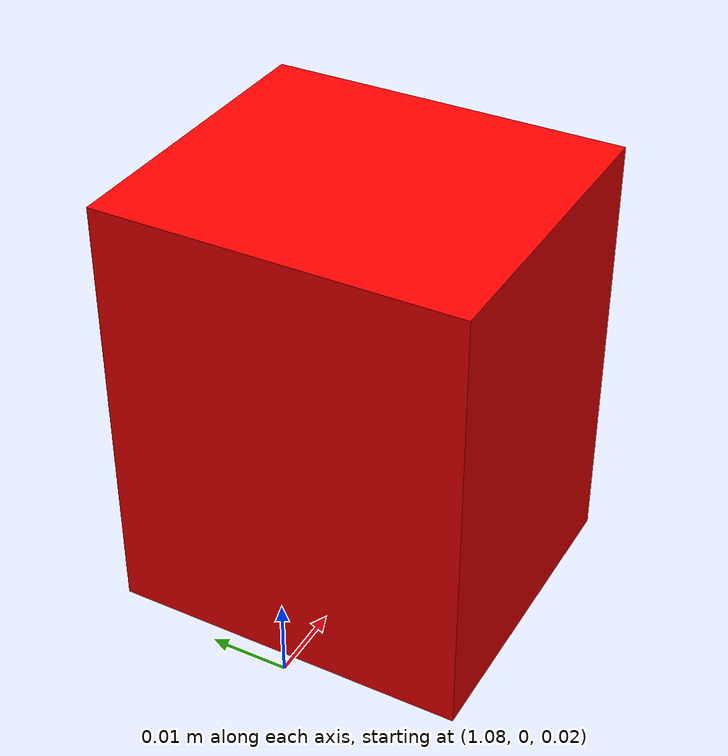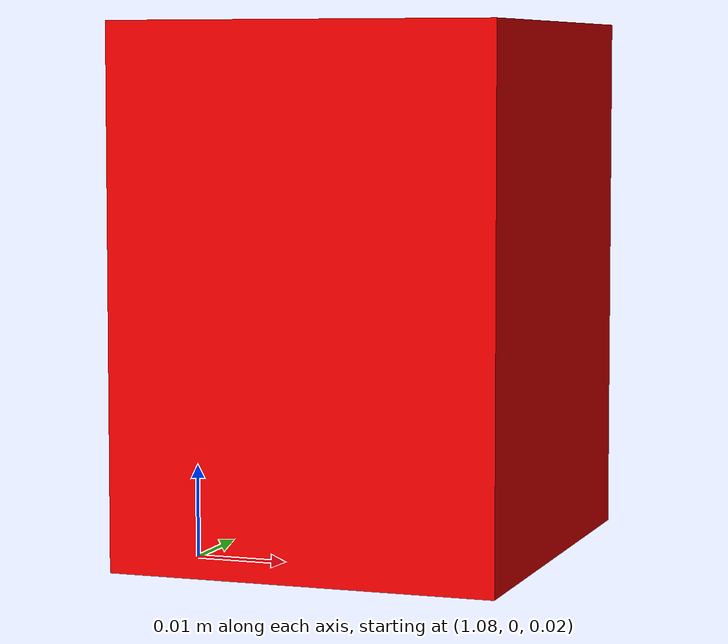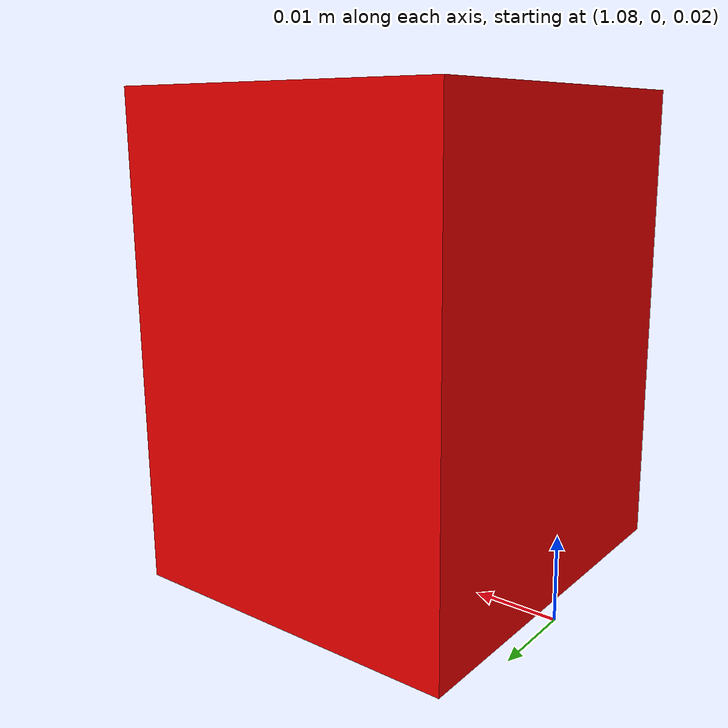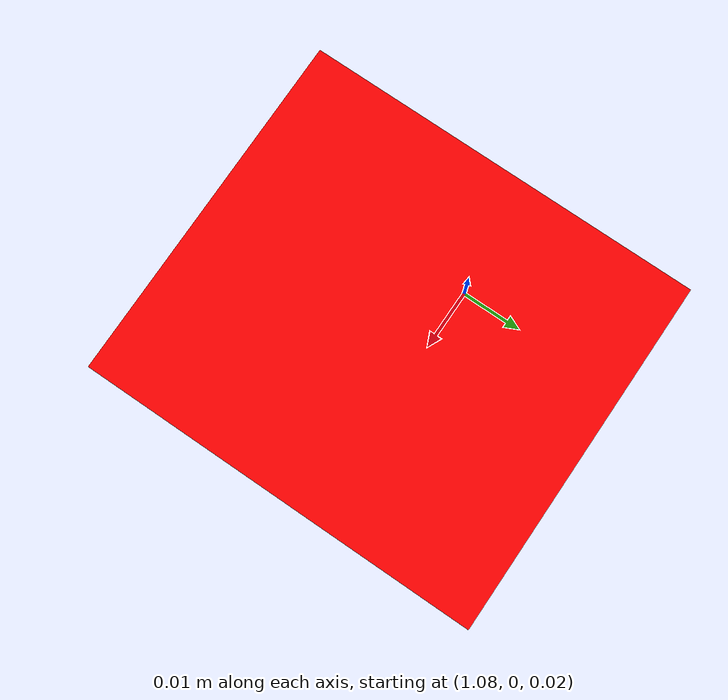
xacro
<?xml version="1.0"?>
<robot name="unit_box" xmlns:xacro="http://ros.org/wiki/xacro">

  <!-- Args -->
  <xacro:arg name="x" default="1.1"/>    <!-- 60 cm in front -->
  <xacro:arg name="y" default="0.0"/>
  <xacro:arg name="z" default="0.05"/>   <!-- 5 cm above ground -->
  <xacro:arg name="box_x" default="0.04"/>
  <xacro:arg name="box_y" default="0.045"/>
  <xacro:arg name="box_z" default="0.055"/>
  <xacro:arg name="mass"  default="0.2"/>
  <xacro:arg name="color" default="red"/> <!-- red | yellow | brown | grey -->

  <!-- Arg -> properties -->
  <xacro:property name="px" value="$(arg x)"/>
  <xacro:property name="py" value="$(arg y)"/>
  <xacro:property name="pz" value="$(arg z)"/>
  <xacro:property name="sx" value="$(arg box_x)"/>
  <xacro:property name="sy" value="$(arg box_y)"/>
  <xacro:property name="sz" value="$(arg box_z)"/>
  <xacro:property name="m"  value="$(arg mass)"/>
  <xacro:property name="cname" value="$(arg color)"/>

  <xacro:property name="origin_xyz" value="${px} ${py} ${pz}"/>
  <!-- inertia for a solid box -->
  <xacro:property name="ixx" value="${(m*((sy**2)+(sz**2)))/12.0}"/>
  <xacro:property name="iyy" value="${(m*((sx**2)+(sz**2)))/12.0}"/>
  <xacro:property name="izz" value="${(m*((sx**2)+(sy**2)))/12.0}"/>

  <!-- Default RGBA; macro overrides into parent scope -->
  <xacro:property name="rgba" value="1 0 0 1"/> <!-- default red -->
  <xacro:macro name="set_rgba_from_color" params="name">
    <!-- fall back stays as-is if none match -->
    <xacro:if value="${name == 'red'}">
      <xacro:property name="rgba" value="1 0 0 1" scope="parent"/>
    </xacro:if>
    <xacro:if value="${name == 'yellow'}">
      <xacro:property name="rgba" value="1 1 0 1" scope="parent"/>
    </xacro:if>
    <xacro:if value="${name == 'brown'}">
      <xacro:property name="rgba" value="0.59 0.29 0 1" scope="parent"/>
    </xacro:if>
    <xacro:if value="${name == 'grey'}">
      <xacro:property name="rgba" value="0.6 0.6 0.6 1" scope="parent"/>
    </xacro:if>
  </xacro:macro>

  <link name="unit_box_link">
    <inertial>
      <mass value="${m}"/>
      <origin xyz="${origin_xyz}" rpy="0 0 0"/>
      <inertia ixx="${ixx}" iyy="${iyy}" izz="${izz}" ixy="0" ixz="0" iyz="0"/>
    </inertial>

    <visual>
      <origin xyz="${origin_xyz}" rpy="0 0 0"/>
      <geometry><box size="${sx} ${sy} ${sz}"/></geometry>
      <material name="custom_color">
        <xacro:set_rgba_from_color name="${cname}"/>
        <color rgba="${rgba}"/>
      </material>
    </visual>

    <collision>
      <origin xyz="${origin_xyz}" rpy="0 0 0"/>
      <geometry><box size="${sx} ${sy} ${sz}"/></geometry>
    </collision>
  </link>

  <gazebo reference="unit_box_link">
    <material>Gazebo/Red</material>
  </gazebo>
</robot>
